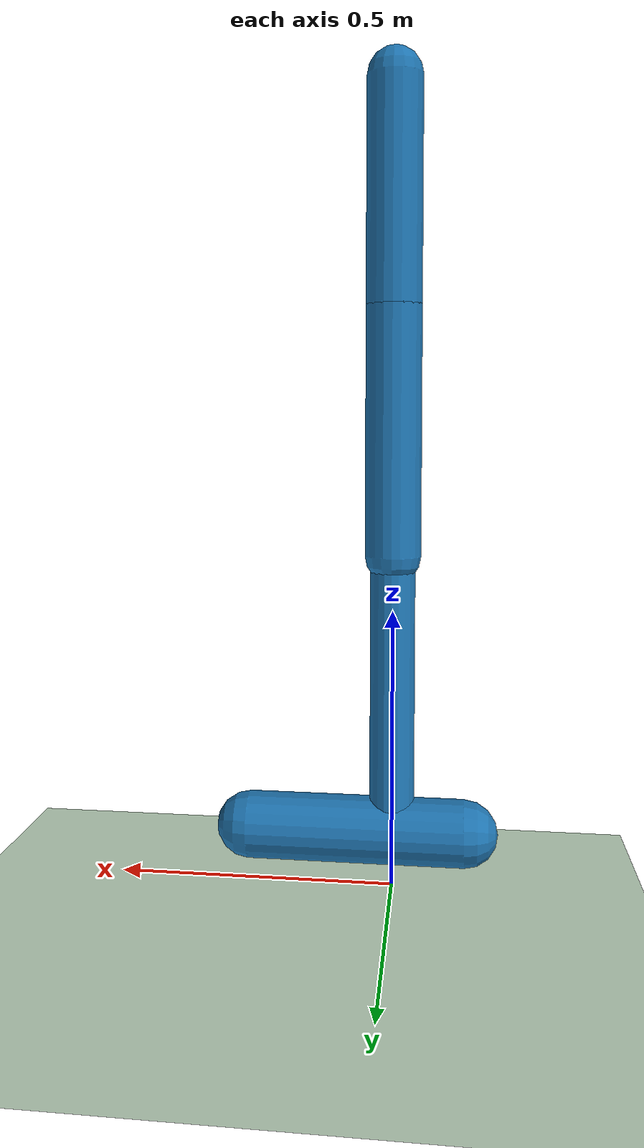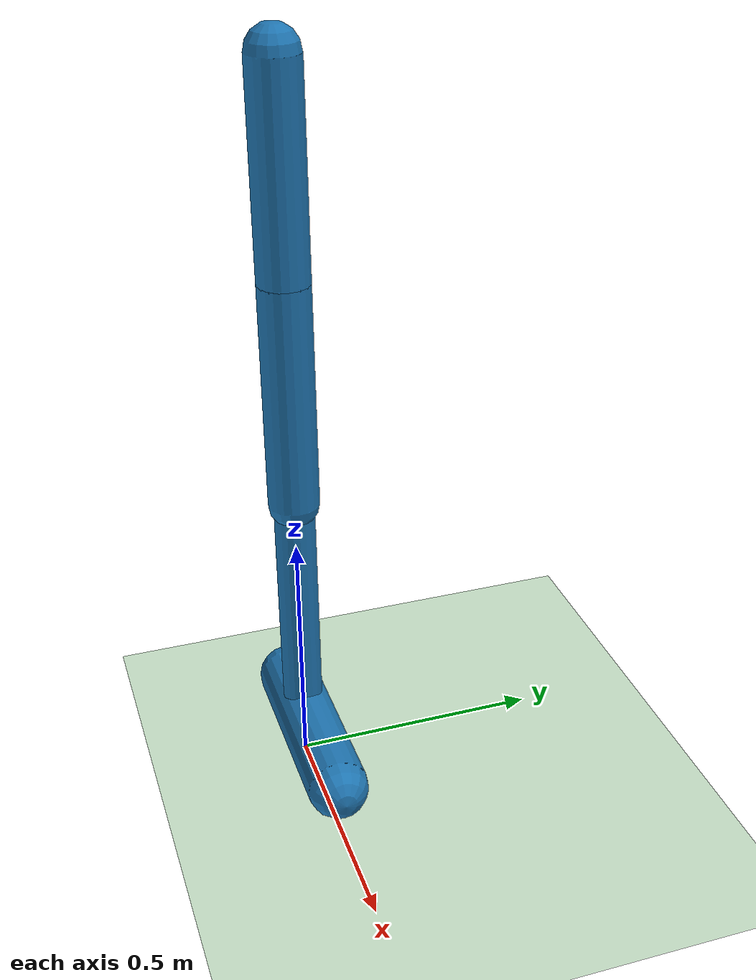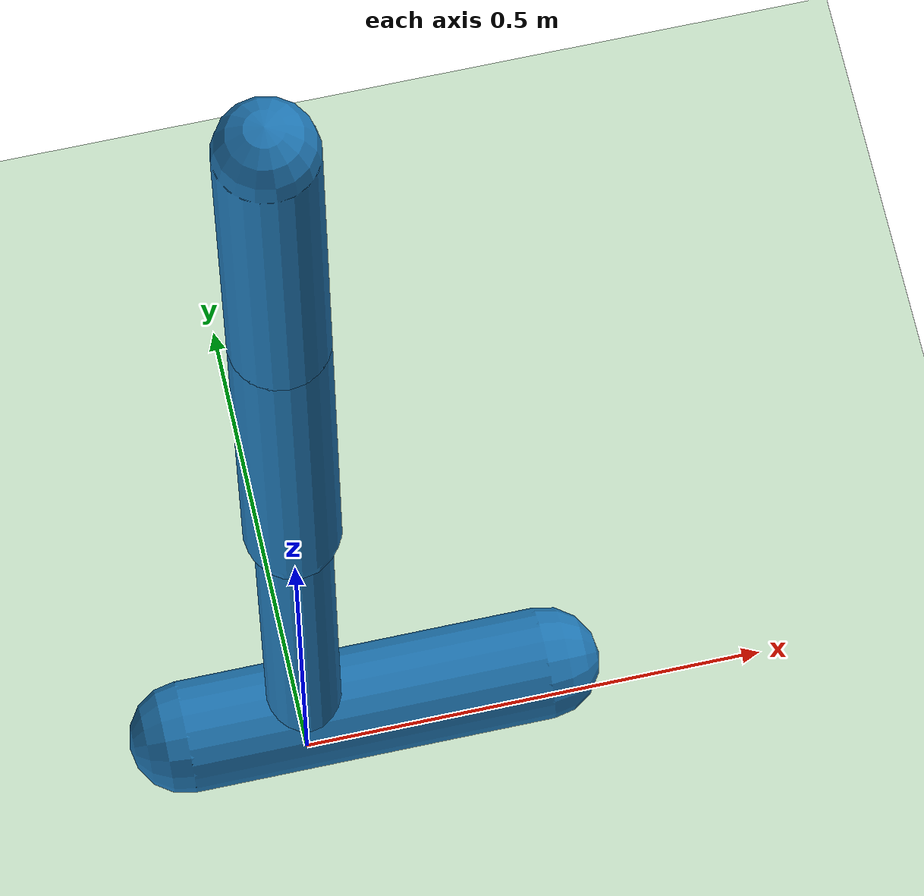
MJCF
<mujoco model="hopper">
  <compiler angle="degree" inertiafromgeom="true"/>
  <default>
    <joint armature="1" damping="1" limited="true"/>
    <geom conaffinity="1" condim="1" contype="1" margin="0.001" material="geom" rgba="0.8 0.6 .4 1" solimp=".8 .8 .01" solref=".02 1"/>
    <motor ctrllimited="true" ctrlrange="-.4 .4"/>
  </default>
  <option integrator="RK4" timestep="0.002"/>
  <visual>
    <map znear="0.02"/>
  </visual>
  <asset>
    <texture builtin="gradient" height="100" rgb1="1 1 1" rgb2="0 0 0" type="skybox" width="100"/>
    <texture builtin="flat" height="1278" mark="cross" markrgb="1 1 1" name="texgeom" random="0.01" rgb1="0.8 0.6 0.4" rgb2="0.8 0.6 0.4" type="cube" width="127"/>
    <texture builtin="checker" height="100" name="texplane" rgb1="0 0 0" rgb2="0.8 0.8 0.8" type="2d" width="100"/>
    <material name="MatPlane" reflectance="0.05" shininess="1" specular="1" texrepeat="60 60"/>
    <material name="geom" texture="texgeom" texuniform="true"/>
  </asset>
  <worldbody>
    <light cutoff="100" diffuse="1 1 1" dir="-0 0 -1.3" directional="true" exponent="1" pos="0 0 1.3" specular=".1 .1 .1"/>
    <geom condim="3" friction="1 .1 .1" material="MatPlane" name="floor" pos="0 0 0" rgba="0.8 0.9 0.8 1" size="20 20 0.125" type="plane" contype="1" conaffinity="255"/>
      <body name="0_torso" pos="0 0 1.25">
      <camera name="0_track" mode="trackcom" pos="0 -3 -0.25" xyaxes="1 0 0 0 0 1"/>
      <joint armature="0" axis="1 0 0" damping="0" limited="false" name="0_rootx" pos="0 0 -1.25" stiffness="0" type="slide"/>
      <joint armature="0" axis="0 0 1" damping="0" limited="false" name="0_rootz" pos="0 0 -1.25" ref="1.25" stiffness="0" type="slide"/>
      <joint armature="0" axis="0 1 0" damping="0" limited="false" name="0_rooty" pos="0 0 0" stiffness="0" type="hinge"/>
      <geom contype="1" conaffinity="0" rgba="0.12156862745098039 0.4666666666666667 0.7058823529411765 1.0" friction="0.9" name="0_torso_geom" size="0.05 0.19999999999999996" type="capsule"/>
      <body name="0_thigh" pos="0 0 -0.19999999999999996">
        <joint axis="0 -1 0" name="0_thigh_joint" pos="0 0 0" range="-150 0" type="hinge"/>
        <geom contype="1" conaffinity="0" rgba="0.12156862745098039 0.4666666666666667 0.7058823529411765 1.0" friction="0.9" pos="0 0 -0.22500000000000009" name="0_thigh_geom" size="0.05 0.22500000000000003" type="capsule"/>
        <body name="0_leg" pos="0 0 -0.70000000000000007">
          <joint axis="0 -1 0" name="0_leg_joint" pos="0 0 0.25" range="-150 0" type="hinge"/>
          <geom contype="1" conaffinity="0" rgba="0.12156862745098039 0.4666666666666667 0.7058823529411765 1.0" friction="0.9" name="0_leg_geom" size="0.04 0.25" type="capsule"/>
          <body name="0_foot" pos="0.13 0 -0.35">
            <joint axis="0 -1 0" name="0_foot_joint" pos="-0.13 0 0.1" range="-45 45" type="hinge"/>
            <geom contype="1" conaffinity="0" rgba="0.12156862745098039 0.4666666666666667 0.7058823529411765 1.0" friction="2.0" pos="-0.065 0 0.1" quat="0.70710678118654757 0 -0.70710678118654746 0" name="0_foot_geom" size="0.06 0.195" type="capsule"/>
          </body>
        </body>
      </body>
    </body><body name="1_torso" pos="0 0 1.25">
      <camera name="1_track" mode="trackcom" pos="0 -3 -0.25" xyaxes="1 0 0 0 0 1"/>
      <joint armature="0" axis="1 0 0" damping="0" limited="false" name="1_rootx" pos="0 0 -1.25" stiffness="0" type="slide"/>
      <joint armature="0" axis="0 0 1" damping="0" limited="false" name="1_rootz" pos="0 0 -1.25" ref="1.25" stiffness="0" type="slide"/>
      <joint armature="0" axis="0 1 0" damping="0" limited="false" name="1_rooty" pos="0 0 0" stiffness="0" type="hinge"/>
      <geom contype="2" conaffinity="0" rgba="1.0 0.4980392156862745 0.054901960784313725 1.0" friction="0.9" name="1_torso_geom" size="0.05 0.19999999999999996" type="capsule"/>
      <body name="1_thigh" pos="0 0 -0.19999999999999996">
        <joint axis="0 -1 0" name="1_thigh_joint" pos="0 0 0" range="-150 0" type="hinge"/>
        <geom contype="2" conaffinity="0" rgba="1.0 0.4980392156862745 0.054901960784313725 1.0" friction="0.9" pos="0 0 -0.22500000000000009" name="1_thigh_geom" size="0.05 0.22500000000000003" type="capsule"/>
        <body name="1_leg" pos="0 0 -0.70000000000000007">
          <joint axis="0 -1 0" name="1_leg_joint" pos="0 0 0.25" range="-150 0" type="hinge"/>
          <geom contype="2" conaffinity="0" rgba="1.0 0.4980392156862745 0.054901960784313725 1.0" friction="0.9" name="1_leg_geom" size="0.04 0.25" type="capsule"/>
          <body name="1_foot" pos="0.13 0 -0.35">
            <joint axis="0 -1 0" name="1_foot_joint" pos="-0.13 0 0.1" range="-45 45" type="hinge"/>
            <geom contype="2" conaffinity="0" rgba="1.0 0.4980392156862745 0.054901960784313725 1.0" friction="2.0" pos="-0.065 0 0.1" quat="0.70710678118654757 0 -0.70710678118654746 0" name="1_foot_geom" size="0.06 0.195" type="capsule"/>
          </body>
        </body>
      </body>
    </body><body name="2_torso" pos="0 0 1.25">
      <camera name="2_track" mode="trackcom" pos="0 -3 -0.25" xyaxes="1 0 0 0 0 1"/>
      <joint armature="0" axis="1 0 0" damping="0" limited="false" name="2_rootx" pos="0 0 -1.25" stiffness="0" type="slide"/>
      <joint armature="0" axis="0 0 1" damping="0" limited="false" name="2_rootz" pos="0 0 -1.25" ref="1.25" stiffness="0" type="slide"/>
      <joint armature="0" axis="0 1 0" damping="0" limited="false" name="2_rooty" pos="0 0 0" stiffness="0" type="hinge"/>
      <geom contype="3" conaffinity="0" rgba="0.17254901960784313 0.6274509803921569 0.17254901960784313 1.0" friction="0.9" name="2_torso_geom" size="0.05 0.19999999999999996" type="capsule"/>
      <body name="2_thigh" pos="0 0 -0.19999999999999996">
        <joint axis="0 -1 0" name="2_thigh_joint" pos="0 0 0" range="-150 0" type="hinge"/>
        <geom contype="3" conaffinity="0" rgba="0.17254901960784313 0.6274509803921569 0.17254901960784313 1.0" friction="0.9" pos="0 0 -0.22500000000000009" name="2_thigh_geom" size="0.05 0.22500000000000003" type="capsule"/>
        <body name="2_leg" pos="0 0 -0.70000000000000007">
          <joint axis="0 -1 0" name="2_leg_joint" pos="0 0 0.25" range="-150 0" type="hinge"/>
          <geom contype="3" conaffinity="0" rgba="0.17254901960784313 0.6274509803921569 0.17254901960784313 1.0" friction="0.9" name="2_leg_geom" size="0.04 0.25" type="capsule"/>
          <body name="2_foot" pos="0.13 0 -0.35">
            <joint axis="0 -1 0" name="2_foot_joint" pos="-0.13 0 0.1" range="-45 45" type="hinge"/>
            <geom contype="3" conaffinity="0" rgba="0.17254901960784313 0.6274509803921569 0.17254901960784313 1.0" friction="2.0" pos="-0.065 0 0.1" quat="0.70710678118654757 0 -0.70710678118654746 0" name="2_foot_geom" size="0.06 0.195" type="capsule"/>
          </body>
        </body>
      </body>
    </body><body name="3_torso" pos="0 0 1.25">
      <camera name="3_track" mode="trackcom" pos="0 -3 -0.25" xyaxes="1 0 0 0 0 1"/>
      <joint armature="0" axis="1 0 0" damping="0" limited="false" name="3_rootx" pos="0 0 -1.25" stiffness="0" type="slide"/>
      <joint armature="0" axis="0 0 1" damping="0" limited="false" name="3_rootz" pos="0 0 -1.25" ref="1.25" stiffness="0" type="slide"/>
      <joint armature="0" axis="0 1 0" damping="0" limited="false" name="3_rooty" pos="0 0 0" stiffness="0" type="hinge"/>
      <geom contype="4" conaffinity="0" rgba="0.8392156862745098 0.15294117647058825 0.1568627450980392 1.0" friction="0.9" name="3_torso_geom" size="0.05 0.19999999999999996" type="capsule"/>
      <body name="3_thigh" pos="0 0 -0.19999999999999996">
        <joint axis="0 -1 0" name="3_thigh_joint" pos="0 0 0" range="-150 0" type="hinge"/>
        <geom contype="4" conaffinity="0" rgba="0.8392156862745098 0.15294117647058825 0.1568627450980392 1.0" friction="0.9" pos="0 0 -0.22500000000000009" name="3_thigh_geom" size="0.05 0.22500000000000003" type="capsule"/>
        <body name="3_leg" pos="0 0 -0.70000000000000007">
          <joint axis="0 -1 0" name="3_leg_joint" pos="0 0 0.25" range="-150 0" type="hinge"/>
          <geom contype="4" conaffinity="0" rgba="0.8392156862745098 0.15294117647058825 0.1568627450980392 1.0" friction="0.9" name="3_leg_geom" size="0.04 0.25" type="capsule"/>
          <body name="3_foot" pos="0.13 0 -0.35">
            <joint axis="0 -1 0" name="3_foot_joint" pos="-0.13 0 0.1" range="-45 45" type="hinge"/>
            <geom contype="4" conaffinity="0" rgba="0.8392156862745098 0.15294117647058825 0.1568627450980392 1.0" friction="2.0" pos="-0.065 0 0.1" quat="0.70710678118654757 0 -0.70710678118654746 0" name="3_foot_geom" size="0.06 0.195" type="capsule"/>
          </body>
        </body>
      </body>
    </body><body name="4_torso" pos="0 0 1.25">
      <camera name="4_track" mode="trackcom" pos="0 -3 -0.25" xyaxes="1 0 0 0 0 1"/>
      <joint armature="0" axis="1 0 0" damping="0" limited="false" name="4_rootx" pos="0 0 -1.25" stiffness="0" type="slide"/>
      <joint armature="0" axis="0 0 1" damping="0" limited="false" name="4_rootz" pos="0 0 -1.25" ref="1.25" stiffness="0" type="slide"/>
      <joint armature="0" axis="0 1 0" damping="0" limited="false" name="4_rooty" pos="0 0 0" stiffness="0" type="hinge"/>
      <geom contype="5" conaffinity="0" rgba="0.5803921568627451 0.403921568627451 0.7411764705882353 1.0" friction="0.9" name="4_torso_geom" size="0.05 0.19999999999999996" type="capsule"/>
      <body name="4_thigh" pos="0 0 -0.19999999999999996">
        <joint axis="0 -1 0" name="4_thigh_joint" pos="0 0 0" range="-150 0" type="hinge"/>
        <geom contype="5" conaffinity="0" rgba="0.5803921568627451 0.403921568627451 0.7411764705882353 1.0" friction="0.9" pos="0 0 -0.22500000000000009" name="4_thigh_geom" size="0.05 0.22500000000000003" type="capsule"/>
        <body name="4_leg" pos="0 0 -0.70000000000000007">
          <joint axis="0 -1 0" name="4_leg_joint" pos="0 0 0.25" range="-150 0" type="hinge"/>
          <geom contype="5" conaffinity="0" rgba="0.5803921568627451 0.403921568627451 0.7411764705882353 1.0" friction="0.9" name="4_leg_geom" size="0.04 0.25" type="capsule"/>
          <body name="4_foot" pos="0.13 0 -0.35">
            <joint axis="0 -1 0" name="4_foot_joint" pos="-0.13 0 0.1" range="-45 45" type="hinge"/>
            <geom contype="5" conaffinity="0" rgba="0.5803921568627451 0.403921568627451 0.7411764705882353 1.0" friction="2.0" pos="-0.065 0 0.1" quat="0.70710678118654757 0 -0.70710678118654746 0" name="4_foot_geom" size="0.06 0.195" type="capsule"/>
          </body>
        </body>
      </body>
    </body>
  </worldbody>
  <actuator>

    <motor ctrllimited="true" ctrlrange="-1.0 1.0" gear="200.0" joint="0_thigh_joint"/>
    <motor ctrllimited="true" ctrlrange="-1.0 1.0" gear="200.0" joint="0_leg_joint"/>
    <motor ctrllimited="true" ctrlrange="-1.0 1.0" gear="200.0" joint="0_foot_joint"/>

    <motor ctrllimited="true" ctrlrange="-1.0 1.0" gear="200.0" joint="1_thigh_joint"/>
    <motor ctrllimited="true" ctrlrange="-1.0 1.0" gear="200.0" joint="1_leg_joint"/>
    <motor ctrllimited="true" ctrlrange="-1.0 1.0" gear="200.0" joint="1_foot_joint"/>

    <motor ctrllimited="true" ctrlrange="-1.0 1.0" gear="200.0" joint="2_thigh_joint"/>
    <motor ctrllimited="true" ctrlrange="-1.0 1.0" gear="200.0" joint="2_leg_joint"/>
    <motor ctrllimited="true" ctrlrange="-1.0 1.0" gear="200.0" joint="2_foot_joint"/>

    <motor ctrllimited="true" ctrlrange="-1.0 1.0" gear="200.0" joint="3_thigh_joint"/>
    <motor ctrllimited="true" ctrlrange="-1.0 1.0" gear="200.0" joint="3_leg_joint"/>
    <motor ctrllimited="true" ctrlrange="-1.0 1.0" gear="200.0" joint="3_foot_joint"/>

    <motor ctrllimited="true" ctrlrange="-1.0 1.0" gear="200.0" joint="4_thigh_joint"/>
    <motor ctrllimited="true" ctrlrange="-1.0 1.0" gear="200.0" joint="4_leg_joint"/>
    <motor ctrllimited="true" ctrlrange="-1.0 1.0" gear="200.0" joint="4_foot_joint"/>

  </actuator>
</mujoco>
